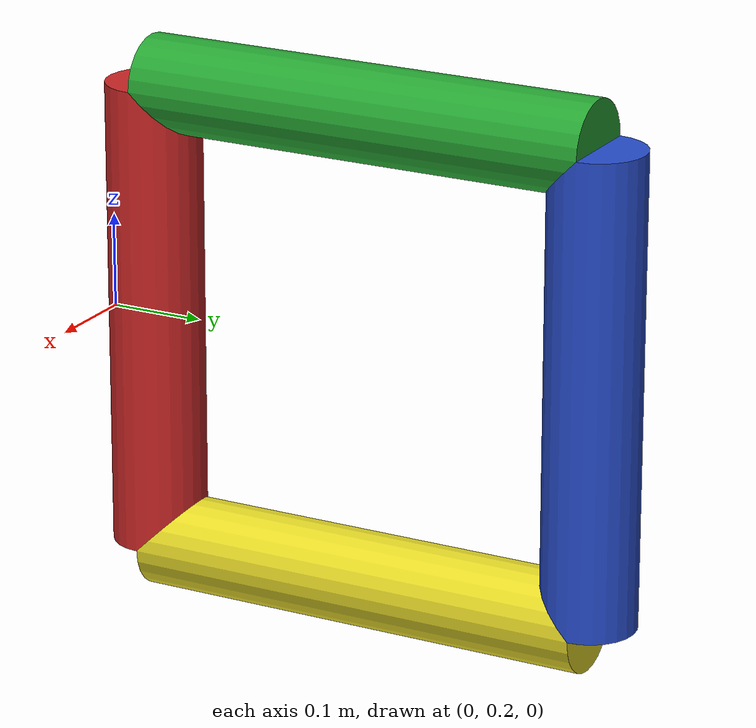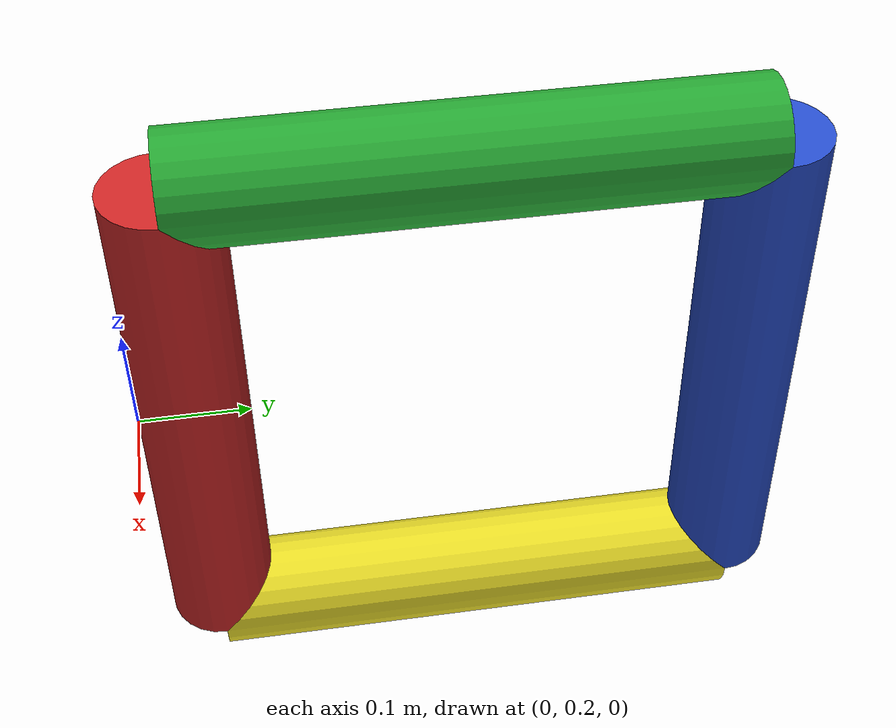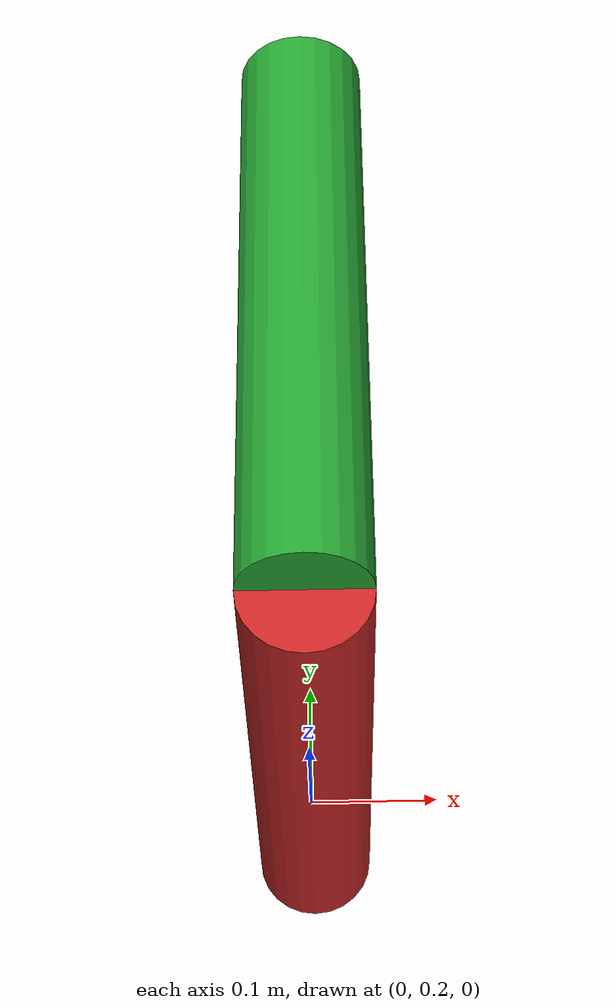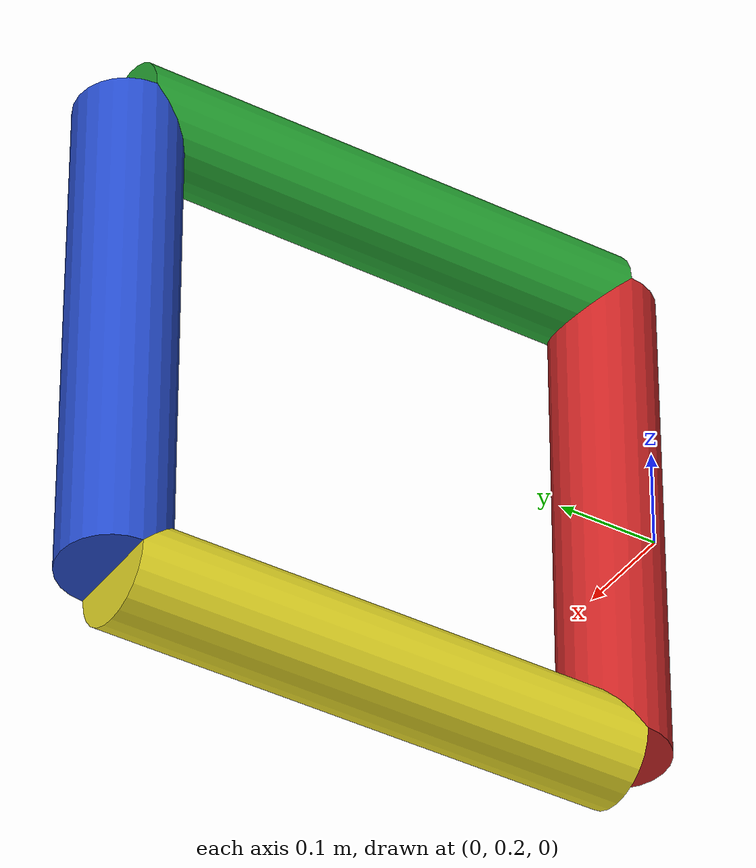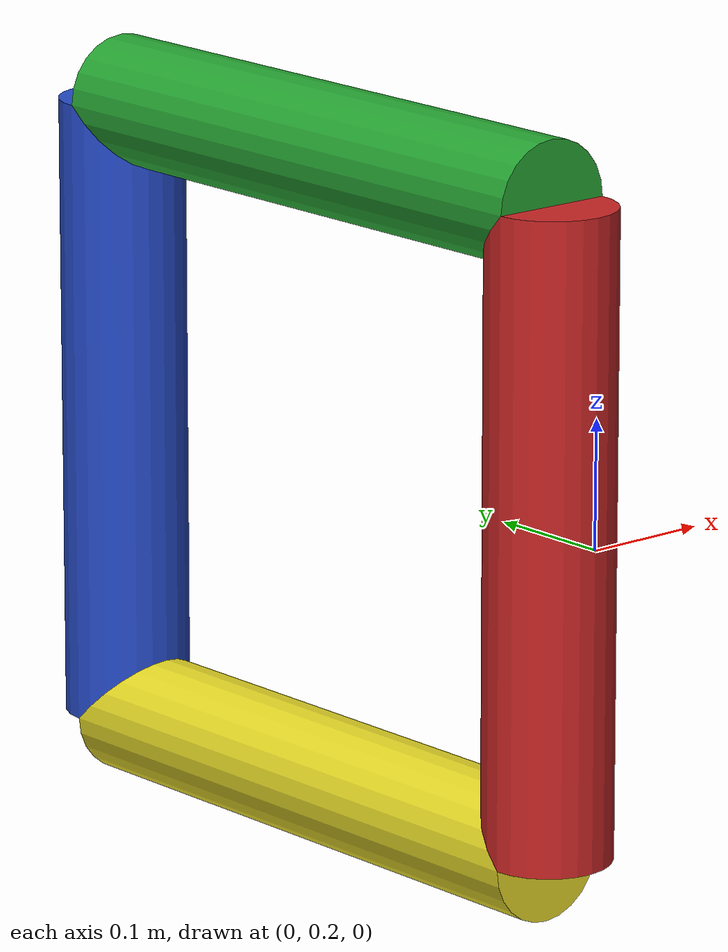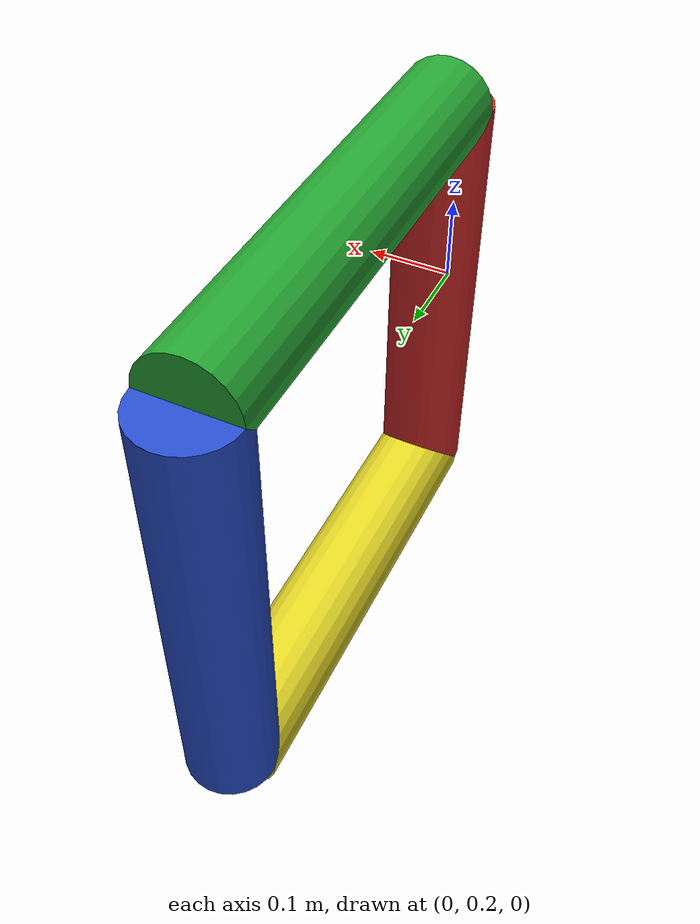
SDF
<sdf version='1.6'>
  <model name='opendog'>

    <link name='ground_link'>
      <self_collide>1</self_collide>
      <pose>0 0.25 0 0 0 0</pose>
      <inertial>
        <pose>0 0 0 0 0 0</pose>
        <mass>1</mass>
        <inertia>
          <ixx>1</ixx>
          <ixy>1</ixy>
          <ixz>1</ixz>
          <iyy>1</iyy>
          <iyz>1</iyz>
          <izz>1</izz>
        </inertia>
      </inertial>
      <collision name='ground_link_collision'>
        <pose>0 0 0 0 0 0</pose>
        <geometry>
          <cylinder>
            <length>0.5</length>
            <radius>0.05</radius>
          </cylinder>
        </geometry>
      </collision>
      <visual name='ground_link_visual'>
        <pose>0 0 0 0 0 0</pose>
        <geometry>
          <cylinder>
            <length>0.5</length>
            <radius>0.05</radius>
          </cylinder>
        </geometry>
        <material>
          <script>
            <uri>file://media/materials/scripts/gazebo.material</uri>
            <name>Gazebo/Red</name>
          </script>
        </material>
      </visual>
    </link>

    <!-- Commented out joint to world -->

    <link name='left_link'>
      <pose>0 0.25 0.25 1.57079632679 0 0</pose>
      <inertial>
        <pose>0 0 -0.25 0 0 0</pose>
        <mass>1</mass>
        <inertia>
          <ixx>1</ixx>
          <ixy>1</ixy>
          <ixz>1</ixz>
          <iyy>1</iyy>
          <iyz>1</iyz>
          <izz>1</izz>
        </inertia>
      </inertial>
      <collision name='left_link_collision'>
        <pose>0 0 -0.25 0 -0 0</pose>
        <geometry>
          <cylinder>
            <length>0.5</length>
            <radius>0.05</radius>
          </cylinder>
        </geometry>
      </collision>
      <visual name='left_link_visual'>
        <pose>0 0 -0.25 0 -0 0</pose>
        <geometry>
          <cylinder>
            <length>0.5</length>
            <radius>0.05</radius>
          </cylinder>
        </geometry>
        <material>
          <script>
            <uri>file://media/materials/scripts/gazebo.material</uri>
            <name>Gazebo/Green</name>
          </script>
        </material>
      </visual>
    </link>

    <joint name='ground_joint1' type='revolute'>
      <child>left_link</child>
      <parent>ground_link</parent>
      <axis>
        <xyz>1 0 0</xyz>
         <limit>
          <lower>-1e+16</lower>
          <upper>1e+16</upper>
        </limit>
        <dynamics>
          <spring_reference>0</spring_reference>
          <spring_stiffness>0</spring_stiffness>
        </dynamics>
        <use_parent_model_frame>1</use_parent_model_frame>
      </axis>
    </joint>

    <link name='top_link'>
      <pose>0 0.75 0.25 0 0 0</pose>
      <inertial>
        <pose>0 0 -0.25 0 0 0</pose>
        <mass>1</mass>
        <inertia>
          <ixx>1</ixx>
          <ixy>1</ixy>
          <ixz>1</ixz>
          <iyy>1</iyy>
          <iyz>1</iyz>
          <izz>1</izz>
        </inertia>
      </inertial>
      <collision name='top_link_collision'>
        <pose>0 0 -0.25 0 -0 0</pose>
        <geometry>
          <cylinder>
            <length>0.5</length>
            <radius>0.05</radius>
          </cylinder>
        </geometry>
      </collision>
      <visual name='top_link_visual'>
        <pose>0 0 -0.25 0 0 0</pose>
        <geometry>
          <cylinder>
            <length>0.5</length>
            <radius>0.05</radius>
          </cylinder>
        </geometry>
        <material>
          <script>
            <uri>file://media/materials/scripts/gazebo.material</uri>
            <name>Gazebo/Blue</name>
          </script>
        </material>
      </visual>
    </link>

    <!-- Joints are with respect to CHILD in SDF -->
    <joint name='ground_joint2' type='revolute'>
      <child>top_link</child>
      <parent>left_link</parent>
      <axis>
        <xyz>1 0 0</xyz>
         <limit>
          <lower>-1e+16</lower>
          <upper>1e+16</upper>
        </limit>
        <dynamics>
          <spring_reference>0</spring_reference>
          <spring_stiffness>0</spring_stiffness>
        </dynamics>
        <use_parent_model_frame>1</use_parent_model_frame>
      </axis>
    </joint>

    <link name='right_link'>
      <pose>0 0.75 -.25 -1.57079632679 0 0</pose>
      <inertial>
        <pose frame=''>0 0 -0.25 0 0 0</pose>
        <mass>1</mass>
        <inertia>
          <ixx>1</ixx>
          <ixy>1</ixy>
          <ixz>1</ixz>
          <iyy>1</iyy>
          <iyz>1</iyz>
          <izz>1</izz>
        </inertia>
      </inertial>
      <collision name='right_link_collision'>
        <pose frame=''>0 0 -0.25 0 -0 0</pose>
        <geometry>
          <cylinder>
            <length>0.5</length>
            <radius>0.05</radius>
          </cylinder>
        </geometry>
      </collision>
      <visual name='right_link_visual'>
        <pose frame=''>0 0 -0.25 0 -0 0</pose>
        <geometry>
          <cylinder>
            <length>0.5</length>
            <radius>0.05</radius>
          </cylinder>
        </geometry>
        <material>
          <script>
            <uri>file://media/materials/scripts/gazebo.material</uri>
            <name>Gazebo/Yellow</name>
          </script>
        </material>
      </visual>
    </link>

    <joint name='top_joint1' type='revolute'>
      <child>right_link</child>
      <parent>top_link</parent>
      <axis>
        <xyz>1 0 0</xyz>
         <limit>
          <lower>-1e+16</lower>
          <upper>1e+16</upper>
        </limit>
        <dynamics>
          <spring_reference>0</spring_reference>
          <spring_stiffness>0</spring_stiffness>
        </dynamics>
        <use_parent_model_frame>1</use_parent_model_frame>
      </axis>
    </joint>

    <!-- Commented out plugin -->

    <!-- Closed Loop Joint -->
        <joint name='button' type='revolute'>
      <pose>0 0 -0.25 0 0 0 </pose>
      <child>ground_link</child>
      <parent>right_link</parent>
      <axis>
        <xyz>1 0 0</xyz>
         <limit>
         <lower>-1e+16</lower>
          <upper>1e+16</upper>
        </limit>
         <dynamics>
          <spring_reference>0</spring_reference>
          <spring_stiffness>0</spring_stiffness>
        </dynamics>
        <use_parent_model_frame>1</use_parent_model_frame>
        <use_parent_model_frame>1</use_parent_model_frame>
      </axis>
    </joint>
  </model>
</sdf>
